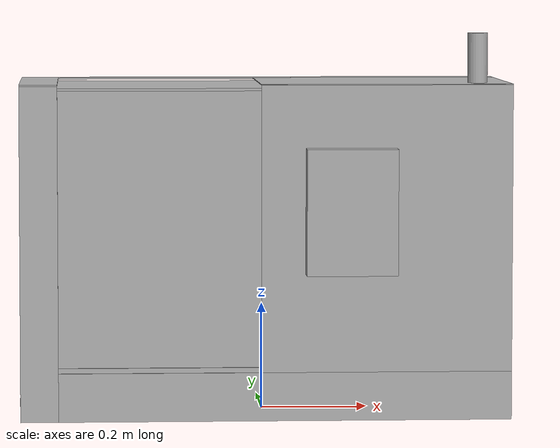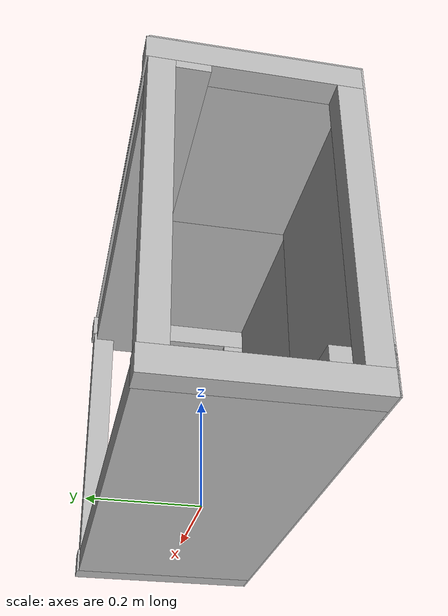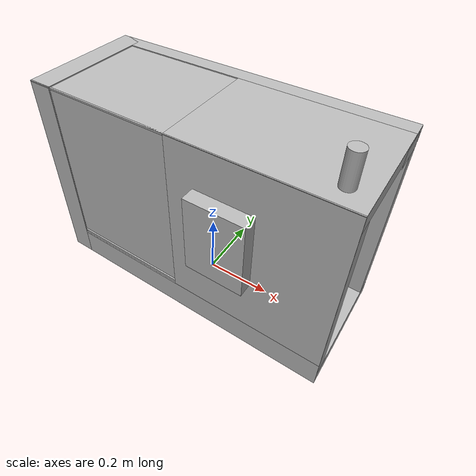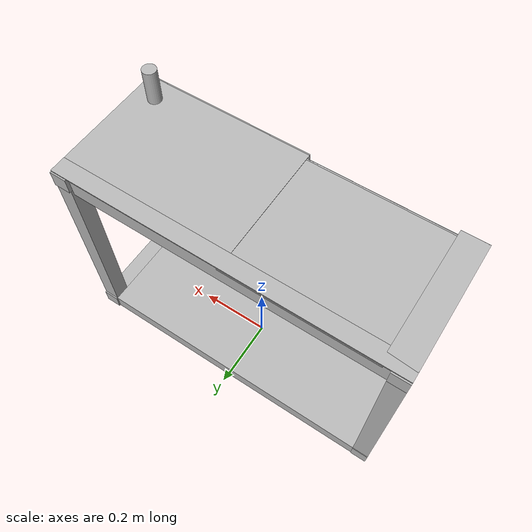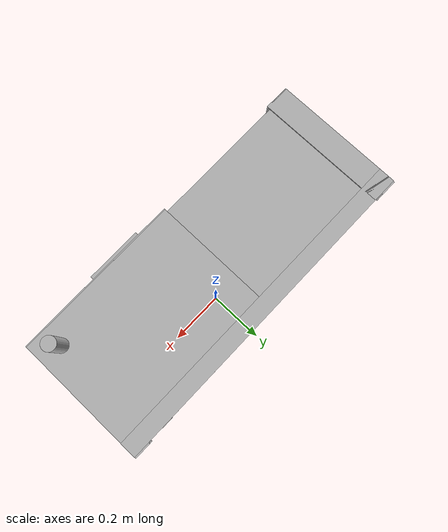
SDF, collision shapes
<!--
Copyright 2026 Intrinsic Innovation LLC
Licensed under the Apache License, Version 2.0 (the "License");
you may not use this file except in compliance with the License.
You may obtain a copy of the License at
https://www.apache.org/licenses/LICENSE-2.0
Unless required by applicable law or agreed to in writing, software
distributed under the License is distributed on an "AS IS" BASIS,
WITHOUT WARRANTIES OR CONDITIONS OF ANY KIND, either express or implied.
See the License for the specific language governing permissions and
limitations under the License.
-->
<?xml version="1.0" ?>

<sdf version="1.9" xmlns:xacro="http://www.ros.org/wiki/xacro">
  <include>
    <static>true</static>
    <name>cnc_enclosure</name>
    <uri>model://intrinsic/models/assets/imts/cnc_enclosure</uri>
  </include>
</sdf>

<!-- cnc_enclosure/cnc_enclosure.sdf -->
<sdf version="1.6">
  <model name='enclosure'>
    <link name ="enclosure_link">
      <visual name ="enclosure">
        <geometry>
          <mesh>
            <uri>model://intrinsic/models/assets/imts/cnc_enclosure/enclosure.glb</uri>
          </mesh>
        </geometry>
      </visual>
      <collision name ="collider_box.001">
        <pose>-0.43252 -0.1605 0.31 0.0 0.0 3.14159</pose>
        <geometry>
          <box>
            <size>0.04501 0.04501 0.53</size>
          </box>
        </geometry>
      </collision>
      <collision name ="collider_box.002">
        <pose>0.43247 -0.1605 0.31 0.0 0.0 3.14159</pose>
        <geometry>
          <box>
            <size>0.04501 0.04501 0.53</size>
          </box>
        </geometry>
      </collision>
      <collision name ="collider_box.003">
        <pose>0.43247 -0.001 0.5975 -1.5708 0.0 3.14159</pose>
        <geometry>
          <box>
            <size>0.04501 0.04501 0.364</size>
          </box>
        </geometry>
      </collision>
      <collision name ="collider_box.004">
        <pose>0.43247 0.15449 0.31 0.0 0.0 3.14159</pose>
        <geometry>
          <box>
            <size>0.04501 0.04501 0.53</size>
          </box>
        </geometry>
      </collision>
      <collision name ="collider_box.005">
        <pose>0.43248 -0.001 0.0225 1.5708 0.0 3.14159</pose>
        <geometry>
          <box>
            <size>0.045 0.045 0.364</size>
          </box>
        </geometry>
      </collision>
      <collision name ="collider_box.006">
        <pose>-0.43252 -0.001 0.5975 -1.5708 -0.0 3.14159</pose>
        <geometry>
          <box>
            <size>0.04501 0.04501 0.364</size>
          </box>
        </geometry>
      </collision>
      <collision name ="collider_box.007">
        <pose>-0.43252 0.15449 0.31 0.0 0.0 3.14159</pose>
        <geometry>
          <box>
            <size>0.04501 0.04501 0.53</size>
          </box>
        </geometry>
      </collision>
      <collision name ="collider_box.008">
        <pose>-0.43262 -0.00221 0.0224 1.5708 0.0 -0.0</pose>
        <geometry>
          <box>
            <size>0.0452 0.0452 0.36158</size>
          </box>
        </geometry>
      </collision>
      <collision name ="collider_box.009">
        <pose>-2e-05 -0.003 0.0225 0.0 1.5708 0.0</pose>
        <geometry>
          <box>
            <size>0.045 0.36 0.82</size>
          </box>
        </geometry>
      </collision>
      <collision name ="collider_box.010">
        <pose>-0.42002 -0.18456 0.3115 0.0 0.0 -1.5708</pose>
        <geometry>
          <box>
            <size>0.00312 0.07 0.623</size>
          </box>
        </geometry>
      </collision>
      <collision name ="collider_box.011">
        <pose>0.22248 -0.18456 0.3115 0.0 0.0 -1.5708</pose>
        <geometry>
          <box>
            <size>0.00312 0.465 0.623</size>
          </box>
        </geometry>
      </collision>
      <collision name ="collider_box.012">
        <pose>0.22248 -0.00456 0.62223 0.0 0.0 -1.5708</pose>
        <geometry>
          <box>
            <size>0.36313 0.465 0.00153</size>
          </box>
        </geometry>
      </collision>
      <collision name ="collider_box.013">
        <pose>-0.42002 -0.00456 0.6215 0.0 0.0 -1.5708</pose>
        <geometry>
          <box>
            <size>0.36313 0.07 0.003</size>
          </box>
        </geometry>
      </collision>
      <collision name ="collider_box.014">
        <pose>-2e-05 0.1545 0.6215 0.0 0.0 -1.5708</pose>
        <geometry>
          <box>
            <size>0.045 0.91 0.003</size>
          </box>
        </geometry>
      </collision>
      <collision name ="collider_box.015">
        <pose>-2e-05 -0.18456 0.04505 0.0 0.0 -1.5708</pose>
        <geometry>
          <box>
            <size>0.00312 0.91 0.09009</size>
          </box>
        </geometry>
      </collision>
      <collision name ="collider_box.016">
        <pose>0.1554 -0.21057 0.38901 1.5708 -0.0 0.0</pose>
        <geometry>
          <box>
            <size>0.16782 0.233 0.04082</size>
          </box>
        </geometry>
      </collision>
      <collision name ="collider_box.019">
        <pose>3e-05 -0.143 0.07222 1.5708 -0.0 3.14159</pose>
        <geometry>
          <box>
            <size>0.8201 0.05445 0.08</size>
          </box>
        </geometry>
      </collision>
      <collision name ="collider_box.020">
        <pose>-2e-05 0.12287 0.58522 0.0 0.0 -1.5708</pose>
        <geometry>
          <box>
            <size>0.09751 0.91 0.05083</size>
          </box>
        </geometry>
      </collision>
      <collision name ="collider_box">
        <pose>0.38027 0.0793 0.59 -1.5708 1.5708 0.0</pose>
        <geometry>
          <box>
            <size>0.0564 0.0564 0.0766</size>
          </box>
        </geometry>
      </collision>
      <collision name ="collider_cylinder">
      <pose>0.39517 -0.12619 0.6692 0.0 -0.0 0.0</pose>
        <geometry>
          <cylinder>
            <length>0.09297</length>
            <radius>0.01862</radius>
          </cylinder>
        </geometry>
      </collision>
    </link>
    <link name ="door_link">
      <visual name ="door">
        <geometry>
          <mesh>
            <uri>model://intrinsic/models/assets/imts/cnc_enclosure/door.glb</uri>
          </mesh>
        </geometry>
      </visual>
      <collision name ="collider_box.017">
        <pose>-0.19752 -0.17559 0.33215 0.0 0.0 -1.5708</pose>
        <geometry>
          <box>
            <size>0.00476 0.39 0.567</size>
          </box>
        </geometry>
      </collision>
      <collision name ="collider_box.018">
        <pose>-0.19752 -0.00098 0.61327 0.0 0.0 -1.5708</pose>
        <geometry>
          <box>
            <size>0.354 0.39 0.00476</size>
          </box>
        </geometry>
      </collision>
    </link>
    <joint name="door_joint_prismatic" type="prismatic">
      <pose>0 0 0 0 0 0</pose>
      <parent>enclosure_link</parent>
      <child>door_link</child>
      <axis>
        <xyz>1.0 -0.0 0.0</xyz>
        <limit>
          <lower>0.0</lower>
          <upper>0.40</upper>
        </limit>
      </axis>
    </joint>
  </model>
</sdf>
